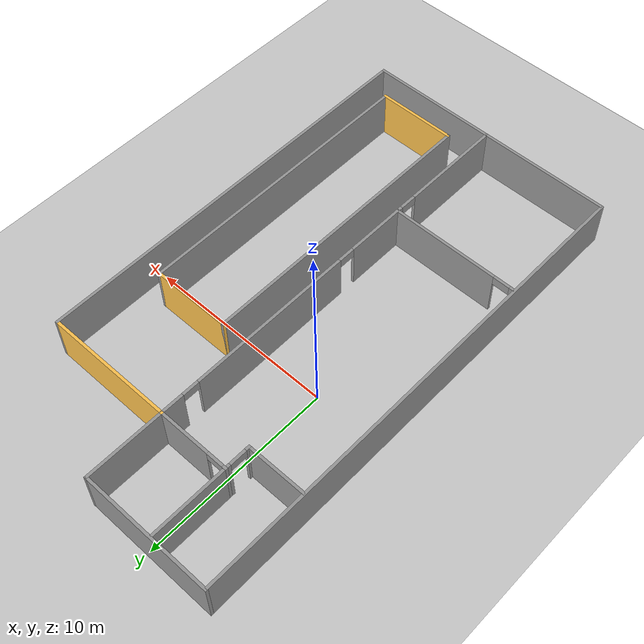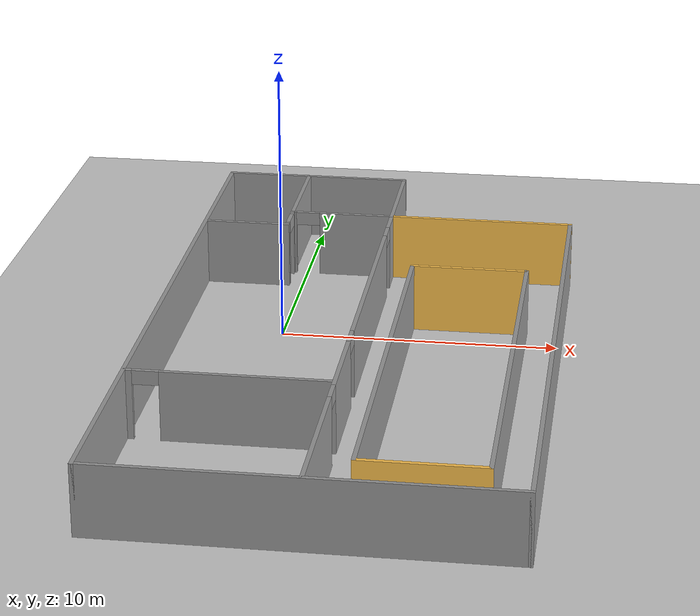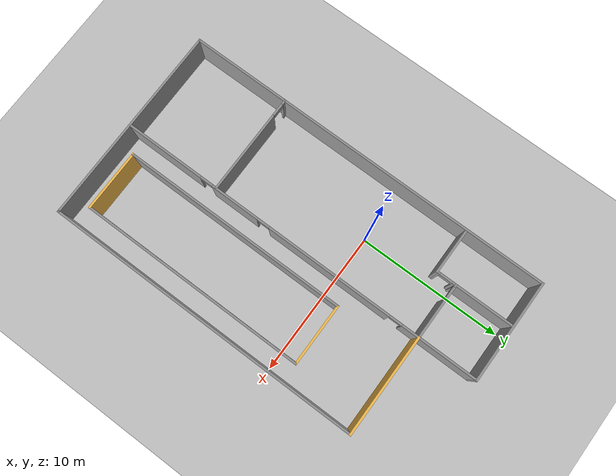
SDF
<sdf version="1.7">
 <world name="default">
  <light name="sun" type="directional">
   <pose>0 0 10 0 -0 0</pose>
   <diffuse>0.8 0.8 0.8 1</diffuse>
   <specular>0.2 0.2 0.2 1</specular>
   <attenuation>
    <range>1000</range>
    <constant>0.9</constant>
    <linear>0.01</linear>
    <quadratic>0.001</quadratic>
   </attenuation>
   <direction>-0.5 0.1 -0.9</direction>
   <spot><inner_angle>0</inner_angle><outer_angle>0</outer_angle><falloff>0</falloff></spot>
  </light>
  <model name="ground_plane">
   <static>1</static>
   <link name="link">
    <collision name="collision">
     <geometry><plane><normal>0 0 1</normal><size>100 100</size></plane></geometry>
     <surface><friction><ode><mu>100</mu><mu2>50</mu2></ode></friction></surface>
    </collision>
    <visual name="visual">
     <cast_shadows>0</cast_shadows>
     <geometry><plane><normal>0 0 1</normal><size>100 100</size></plane></geometry>
     <material>
      <script><uri>file://media/materials/scripts/gazebo.material</uri><name>Gazebo/Grey</name></script>
     </material>
    </visual>
   </link>
  </model>
  <gravity>0 0 -9.8</gravity>
  <magnetic_field>6e-06 2.3e-05 -4.2e-05</magnetic_field>
  <atmosphere type="adiabatic"/>
  <physics type="ode">
   <max_step_size>0.001</max_step_size>
   <real_time_factor>1</real_time_factor>
   <real_time_update_rate>1000</real_time_update_rate>
  </physics>
  <scene><ambient>0.4 0.4 0.4 1</ambient><background>0.7 0.7 0.7 1</background><shadows>1</shadows></scene>
  <audio><device>default</device></audio>
  <spherical_coordinates>
   <surface_model>EARTH_WGS84</surface_model>
   <latitude_deg>0</latitude_deg>
   <longitude_deg>0</longitude_deg>
   <elevation>0</elevation>
   <heading_deg>0</heading_deg>
  </spherical_coordinates>
  <model name="1st_floor">
   <pose>3.19111 -2.86272 0 0 -0 0</pose>
   <link name="Wall_149">
    <collision name="Wall_149_Collision">
     <geometry><box><size>26 0.15 2.5</size></box></geometry>
     <pose>0 0 1.25 0 -0 0</pose>
    </collision>
    <visual name="Wall_149_Visual">
     <pose>0 0 1.25 0 -0 0</pose>
     <geometry><box><size>26 0.15 2.5</size></box></geometry>
     <material>
      <script><uri>file://media/materials/scripts/gazebo.material</uri><name>Gazebo/Grey</name></script>
      <ambient>1 1 1 1</ambient>
     </material>
     <meta><layer>0</layer></meta>
    </visual>
    <pose>-6.925 -0.049999 0 0 -0 -1.5708</pose>
   </link>
   <link name="Wall_156">
    <collision name="Wall_156_Collision">
     <geometry><box><size>14 0.15 2.5</size></box></geometry>
     <pose>0 0 1.25 0 -0 0</pose>
    </collision>
    <visual name="Wall_156_Visual">
     <pose>0 0 1.25 0 -0 0</pose>
     <geometry><box><size>14 0.15 2.5</size></box></geometry>
     <material>
      <script><uri>file://media/materials/scripts/gazebo.material</uri><name>Gazebo/Grey</name></script>
      <ambient>1 1 1 1</ambient>
     </material>
     <meta><layer>0</layer></meta>
    </visual>
    <pose>0 -12.975 0 0 -0 0</pose>
   </link>
   <link name="Wall_158">
    <collision name="Wall_158_Collision">
     <geometry><box><size>22 0.15 2.5</size></box></geometry>
     <pose>0 0 1.25 0 -0 0</pose>
    </collision>
    <visual name="Wall_158_Visual">
     <pose>0 0 1.25 0 -0 0</pose>
     <geometry><box><size>22 0.15 2.5</size></box></geometry>
     <material>
      <script><uri>file://media/materials/scripts/gazebo.material</uri><name>Gazebo/Grey</name></script>
      <ambient>1 1 1 1</ambient>
     </material>
     <meta><layer>0</layer></meta>
    </visual>
    <pose>6.925 -2.05 0 0 -0 1.5708</pose>
   </link>
   <link name="Wall_160">
    <collision name="Wall_160_Collision">
     <geometry><box><size>7 0.15 2.5</size></box></geometry>
     <pose>0 0 1.25 0 -0 0</pose>
    </collision>
    <visual name="Wall_160_Visual">
     <pose>0 0 1.25 0 -0 0</pose>
     <geometry><box><size>7 0.15 2.5</size></box></geometry>
     <material>
      <script><uri>file://media/materials/scripts/gazebo.material</uri><name>Gazebo/Grey</name></script>
      <ambient>1 0.764706 0.305882 1</ambient>
     </material>
     <meta><layer>0</layer></meta>
    </visual>
    <pose>3.5 8.875 0 0 -0 3.14159</pose>
   </link>
   <link name="Wall_162">
    <collision name="Wall_162_Collision">
     <geometry><box><size>4.25 0.15 2.5</size></box></geometry>
     <pose>0 0 1.25 0 -0 0</pose>
    </collision>
    <visual name="Wall_162_Visual">
     <pose>0 0 1.25 0 -0 0</pose>
     <geometry><box><size>4.25 0.15 2.5</size></box></geometry>
     <material>
      <script><uri>file://media/materials/scripts/gazebo.material</uri><name>Gazebo/Grey</name></script>
      <ambient>1 1 1 1</ambient>
     </material>
     <meta><layer>0</layer></meta>
    </visual>
    <pose>0.075 10.925 0 0 -0 1.5708</pose>
   </link>
   <link name="Wall_163">
    <collision name="Wall_163_Collision">
     <geometry><box><size>7.15 0.15 2.5</size></box></geometry>
     <pose>0 0 1.25 0 -0 0</pose>
    </collision>
    <visual name="Wall_163_Visual">
     <pose>0 0 1.25 0 -0 0</pose>
     <geometry><box><size>7.15 0.15 2.5</size></box></geometry>
     <material>
      <script><uri>file://media/materials/scripts/gazebo.material</uri><name>Gazebo/Grey</name></script>
      <ambient>1 1 1 1</ambient>
     </material>
     <meta><layer>0</layer></meta>
    </visual>
    <pose>-3.425 12.975 0 0 -0 3.14159</pose>
   </link>
   <link name="Wall_165">
    <pose>0.075 -2.05 0 0 -0 -1.5708</pose>
    <visual name="Wall_165_Visual_0">
     <pose>-10.364 0 1.25 0 -0 0</pose>
     <geometry><box><size>1.27193 0.15 2.5</size></box></geometry>
     <material>
      <script><uri>file://media/materials/scripts/gazebo.material</uri><name>Gazebo/Grey</name></script>
      <ambient>1 1 1 1</ambient>
     </material>
     <meta><layer>0</layer></meta>
    </visual>
    <collision name="Wall_165_Collision_0">
     <geometry><box><size>1.27193 0.15 2.5</size></box></geometry>
     <pose>-10.364 0 1.25 0 -0 0</pose>
    </collision>
    <visual name="Wall_165_Visual_1">
     <pose>-4.37057 0 1.25 0 -0 0</pose>
     <geometry><box><size>8.91501 0.15 2.5</size></box></geometry>
     <material>
      <script><uri>file://media/materials/scripts/gazebo.material</uri><name>Gazebo/Grey</name></script>
      <ambient>1 1 1 1</ambient>
     </material>
     <meta><layer>0</layer></meta>
    </visual>
    <collision name="Wall_165_Collision_1">
     <geometry><box><size>8.91501 0.15 2.5</size></box></geometry>
     <pose>-4.37057 0 1.25 0 -0 0</pose>
    </collision>
    <visual name="Wall_165_Visual_2">
     <pose>2.71557 0 1.25 0 -0 0</pose>
     <geometry><box><size>3.45727 0.15 2.5</size></box></geometry>
     <material>
      <script><uri>file://media/materials/scripts/gazebo.material</uri><name>Gazebo/Grey</name></script>
      <ambient>1 1 1 1</ambient>
     </material>
     <meta><layer>0</layer></meta>
    </visual>
    <collision name="Wall_165_Collision_2">
     <geometry><box><size>3.45727 0.15 2.5</size></box></geometry>
     <pose>2.71557 0 1.25 0 -0 0</pose>
    </collision>
    <visual name="Wall_165_Visual_3">
     <pose>8.1721 0 1.25 0 -0 0</pose>
     <geometry><box><size>5.65579 0.15 2.5</size></box></geometry>
     <material>
      <script><uri>file://media/materials/scripts/gazebo.material</uri><name>Gazebo/Grey</name></script>
      <ambient>1 1 1 1</ambient>
     </material>
     <meta><layer>0</layer></meta>
    </visual>
    <collision name="Wall_165_Collision_3">
     <geometry><box><size>5.65579 0.15 2.5</size></box></geometry>
     <pose>8.1721 0 1.25 0 -0 0</pose>
    </collision>
    <visual name="Wall_165_Visual_4">
     <pose>-9.27807 0 2.25 0 -0 0</pose>
     <geometry><box><size>0.9 0.15 0.5</size></box></geometry>
     <material>
      <script><uri>file://media/materials/scripts/gazebo.material</uri><name>Gazebo/Grey</name></script>
      <ambient>1 1 1 1</ambient>
     </material>
     <meta><layer>0</layer></meta>
    </visual>
    <collision name="Wall_165_Collision_4">
     <geometry><box><size>0.9 0.15 0.5</size></box></geometry>
     <pose>-9.27807 0 2.25 0 -0 0</pose>
    </collision>
    <visual name="Wall_165_Visual_5">
     <pose>0.53694 0 2.25 0 -0 0</pose>
     <geometry><box><size>0.9 0.15 0.5</size></box></geometry>
     <material>
      <script><uri>file://media/materials/scripts/gazebo.material</uri><name>Gazebo/Grey</name></script>
      <ambient>1 1 1 1</ambient>
     </material>
     <meta><layer>0</layer></meta>
    </visual>
    <collision name="Wall_165_Collision_5">
     <geometry><box><size>0.9 0.15 0.5</size></box></geometry>
     <pose>0.53694 0 2.25 0 -0 0</pose>
    </collision>
    <visual name="Wall_165_Visual_6">
     <pose>4.89421 0 2.25 0 -0 0</pose>
     <geometry><box><size>0.9 0.15 0.5</size></box></geometry>
     <material>
      <script><uri>file://media/materials/scripts/gazebo.material</uri><name>Gazebo/Grey</name></script>
      <ambient>1 1 1 1</ambient>
     </material>
     <meta><layer>0</layer></meta>
    </visual>
    <collision name="Wall_165_Collision_6">
     <geometry><box><size>0.9 0.15 0.5</size></box></geometry>
     <pose>4.89421 0 2.25 0 -0 0</pose>
    </collision>
   </link>
   <link name="Wall_167">
    <pose>-1.85 8.875 0 0 -0 3.14159</pose>
    <visual name="Wall_167_Visual_0">
     <pose>-0.563372 0 1.25 0 -0 0</pose>
     <geometry><box><size>2.87326 0.15 2.5</size></box></geometry>
     <material>
      <script><uri>file://media/materials/scripts/gazebo.material</uri><name>Gazebo/Grey</name></script>
      <ambient>1 1 1 1</ambient>
     </material>
     <meta><layer>0</layer></meta>
    </visual>
    <collision name="Wall_167_Collision_0">
     <geometry><box><size>2.87326 0.15 2.5</size></box></geometry>
     <pose>-0.563372 0 1.25 0 -0 0</pose>
    </collision>
    <visual name="Wall_167_Visual_1">
     <pose>1.88663 0 1.25 0 -0 0</pose>
     <geometry><box><size>0.226744 0.15 2.5</size></box></geometry>
     <material>
      <script><uri>file://media/materials/scripts/gazebo.material</uri><name>Gazebo/Grey</name></script>
      <ambient>1 1 1 1</ambient>
     </material>
     <meta><layer>0</layer></meta>
    </visual>
    <collision name="Wall_167_Collision_1">
     <geometry><box><size>0.226744 0.15 2.5</size></box></geometry>
     <pose>1.88663 0 1.25 0 -0 0</pose>
    </collision>
    <visual name="Wall_167_Visual_2">
     <pose>1.32326 0 2.25 0 -0 0</pose>
     <geometry><box><size>0.9 0.15 0.5</size></box></geometry>
     <material>
      <script><uri>file://media/materials/scripts/gazebo.material</uri><name>Gazebo/Grey</name></script>
      <ambient>1 1 1 1</ambient>
     </material>
     <meta><layer>0</layer></meta>
    </visual>
    <collision name="Wall_167_Collision_2">
     <geometry><box><size>0.9 0.15 0.5</size></box></geometry>
     <pose>1.32326 0 2.25 0 -0 0</pose>
    </collision>
   </link>
   <link name="Wall_169">
    <collision name="Wall_169_Collision">
     <geometry><box><size>4.125 0.15 2.5</size></box></geometry>
     <pose>0 0 1.25 0 -0 0</pose>
    </collision>
    <visual name="Wall_169_Visual">
     <pose>0 0 1.25 0 -0 0</pose>
     <geometry><box><size>4.125 0.15 2.5</size></box></geometry>
     <material>
      <script><uri>file://media/materials/scripts/gazebo.material</uri><name>Gazebo/Grey</name></script>
      <ambient>1 1 1 1</ambient>
     </material>
     <meta><layer>0</layer></meta>
    </visual>
    <pose>-3.775 10.8625 0 0 -0 1.5708</pose>
   </link>
   <link name="Wall_171">
    <pose>-3.775 8.2 0 0 -0 -1.5708</pose>
    <visual name="Wall_171_Visual_0">
     <pose>-0.590407 0 1.25 0 -0 0</pose>
     <geometry><box><size>0.319186 0.15 2.5</size></box></geometry>
     <material>
      <script><uri>file://media/materials/scripts/gazebo.material</uri><name>Gazebo/Grey</name></script>
      <ambient>1 1 1 1</ambient>
     </material>
     <meta><layer>0</layer></meta>
    </visual>
    <collision name="Wall_171_Collision_0">
     <geometry><box><size>0.319186 0.15 2.5</size></box></geometry>
     <pose>-0.590407 0 1.25 0 -0 0</pose>
    </collision>
    <visual name="Wall_171_Visual_1">
     <pose>0.609593 0 1.25 0 -0 0</pose>
     <geometry><box><size>0.280814 0.15 2.5</size></box></geometry>
     <material>
      <script><uri>file://media/materials/scripts/gazebo.material</uri><name>Gazebo/Grey</name></script>
      <ambient>1 1 1 1</ambient>
     </material>
     <meta><layer>0</layer></meta>
    </visual>
    <collision name="Wall_171_Collision_1">
     <geometry><box><size>0.280814 0.15 2.5</size></box></geometry>
     <pose>0.609593 0 1.25 0 -0 0</pose>
    </collision>
    <visual name="Wall_171_Visual_2">
     <pose>0.019186 0 2.25 0 -0 0</pose>
     <geometry><box><size>0.9 0.15 0.5</size></box></geometry>
     <material>
      <script><uri>file://media/materials/scripts/gazebo.material</uri><name>Gazebo/Grey</name></script>
      <ambient>1 1 1 1</ambient>
     </material>
     <meta><layer>0</layer></meta>
    </visual>
    <collision name="Wall_171_Collision_2">
     <geometry><box><size>0.9 0.15 0.5</size></box></geometry>
     <pose>0.019186 0 2.25 0 -0 0</pose>
    </collision>
   </link>
   <link name="Wall_172">
    <collision name="Wall_172_Collision">
     <geometry><box><size>3.25 0.15 2.5</size></box></geometry>
     <pose>0 0 1.25 0 -0 0</pose>
    </collision>
    <visual name="Wall_172_Visual">
     <pose>0 0 1.25 0 -0 0</pose>
     <geometry><box><size>3.25 0.15 2.5</size></box></geometry>
     <material>
      <script><uri>file://media/materials/scripts/gazebo.material</uri><name>Gazebo/Grey</name></script>
      <ambient>1 1 1 1</ambient>
     </material>
     <meta><layer>0</layer></meta>
    </visual>
    <pose>-5.325 7.525 0 0 -0 3.14159</pose>
   </link>
   <link name="Wall_175">
    <pose>-3.4182 -6.2136 0 0 -0 0</pose>
    <visual name="Wall_175_Visual_0">
     <pose>-3.39023 0 1.25 0 -0 0</pose>
     <geometry><box><size>0.344544 0.15 2.5</size></box></geometry>
     <material>
      <script><uri>file://media/materials/scripts/gazebo.material</uri><name>Gazebo/Grey</name></script>
      <ambient>1 1 1 1</ambient>
     </material>
     <meta><layer>0</layer></meta>
    </visual>
    <collision name="Wall_175_Collision_0">
     <geometry><box><size>0.344544 0.15 2.5</size></box></geometry>
     <pose>-3.39023 0 1.25 0 -0 0</pose>
    </collision>
    <visual name="Wall_175_Visual_1">
     <pose>0.622272 0 1.25 0 -0 0</pose>
     <geometry><box><size>5.88046 0.15 2.5</size></box></geometry>
     <material>
      <script><uri>file://media/materials/scripts/gazebo.material</uri><name>Gazebo/Grey</name></script>
      <ambient>1 1 1 1</ambient>
     </material>
     <meta><layer>0</layer></meta>
    </visual>
    <collision name="Wall_175_Collision_1">
     <geometry><box><size>5.88046 0.15 2.5</size></box></geometry>
     <pose>0.622272 0 1.25 0 -0 0</pose>
    </collision>
    <visual name="Wall_175_Visual_2">
     <pose>-2.76796 0 2.25 0 -0 0</pose>
     <geometry><box><size>0.9 0.15 0.5</size></box></geometry>
     <material>
      <script><uri>file://media/materials/scripts/gazebo.material</uri><name>Gazebo/Grey</name></script>
      <ambient>1 1 1 1</ambient>
     </material>
     <meta><layer>0</layer></meta>
    </visual>
    <collision name="Wall_175_Collision_2">
     <geometry><box><size>0.9 0.15 0.5</size></box></geometry>
     <pose>-2.76796 0 2.25 0 -0 0</pose>
    </collision>
   </link>
   <link name="Wall_181">
    <collision name="Wall_181_Collision">
     <geometry><box><size>15.75 0.15 2.5</size></box></geometry>
     <pose>0 0 1.25 0 -0 0</pose>
    </collision>
    <visual name="Wall_181_Visual">
     <pose>0 0 1.25 0 -0 0</pose>
     <geometry><box><size>15.75 0.15 2.5</size></box></geometry>
     <material>
      <script><uri>file://media/materials/scripts/gazebo.material</uri><name>Gazebo/Grey</name></script>
      <ambient>1 1 1 1</ambient>
     </material>
     <meta><layer>0</layer></meta>
    </visual>
    <pose>1.43899 -3.81868 0 0 -0 -1.5708</pose>
   </link>
   <link name="Wall_184">
    <collision name="Wall_184_Collision">
     <geometry><box><size>4.31083 0.15 2.5</size></box></geometry>
     <pose>0 0 1.25 0 -0 0</pose>
    </collision>
    <visual name="Wall_184_Visual">
     <pose>0 0 1.25 0 -0 0</pose>
     <geometry><box><size>4.31083 0.15 2.5</size></box></geometry>
     <material>
      <script><uri>file://media/materials/scripts/gazebo.material</uri><name>Gazebo/Grey</name></script>
      <ambient>1 0.764706 0.305882 1</ambient>
     </material>
     <meta><layer>0</layer></meta>
    </visual>
    <pose>3.51941 -11.6187 0 0 -0 0</pose>
   </link>
   <link name="Wall_189">
    <collision name="Wall_189_Collision">
     <geometry><box><size>4.25 0.15 2.5</size></box></geometry>
     <pose>0 0 1.25 0 -0 0</pose>
    </collision>
    <visual name="Wall_189_Visual">
     <pose>0 0 1.25 0 -0 0</pose>
     <geometry><box><size>4.25 0.15 2.5</size></box></geometry>
     <material>
      <script><uri>file://media/materials/scripts/gazebo.material</uri><name>Gazebo/Grey</name></script>
      <ambient>1 0.764706 0.305882 1</ambient>
     </material>
     <meta><layer>0</layer></meta>
    </visual>
    <pose>3.48899 3.98132 0 0 -0 0</pose>
   </link>
   <link name="Wall_195">
    <collision name="Wall_195_Collision">
     <geometry><box><size>15.75 0.15 2.5</size></box></geometry>
     <pose>0 0 1.25 0 -0 0</pose>
    </collision>
    <visual name="Wall_195_Visual">
     <pose>0 0 1.25 0 -0 0</pose>
     <geometry><box><size>15.75 0.15 2.5</size></box></geometry>
     <material>
      <script><uri>file://media/materials/scripts/gazebo.material</uri><name>Gazebo/Grey</name></script>
      <ambient>1 1 1 1</ambient>
     </material>
     <meta><layer>0</layer></meta>
    </visual>
    <pose>5.59982 -3.81868 0 0 -0 1.5708</pose>
   </link>
   <static>1</static>
  </model>
 </world>
</sdf>
